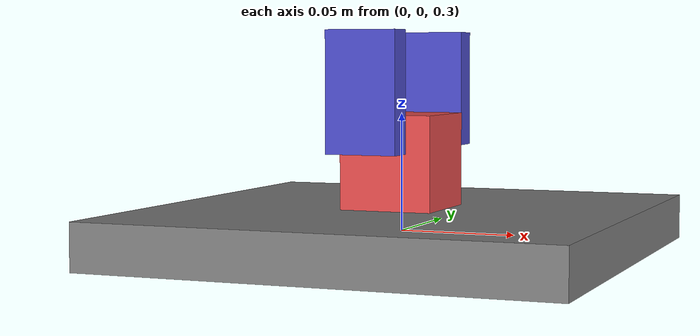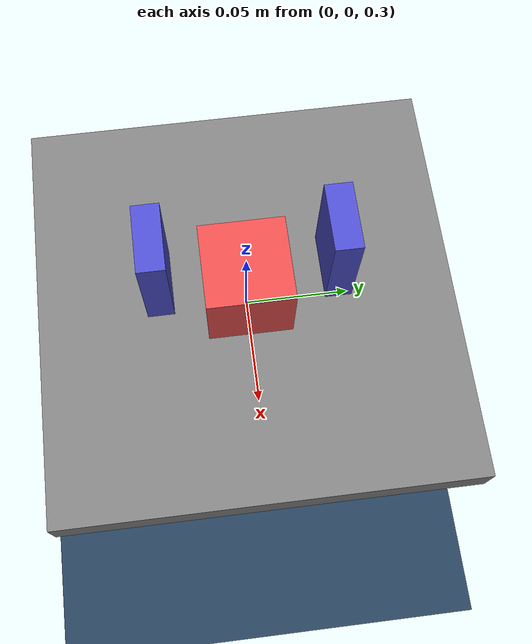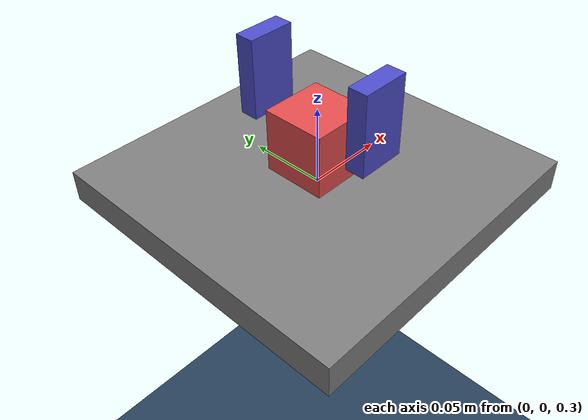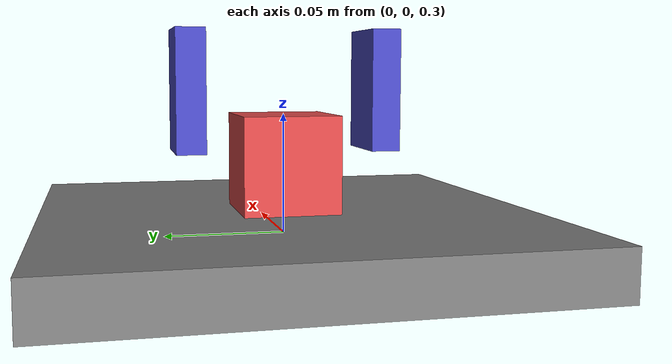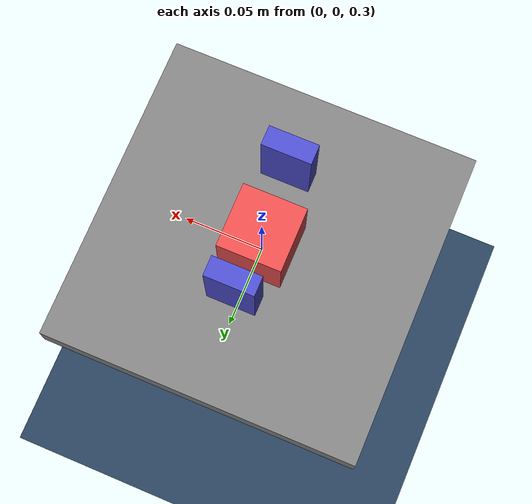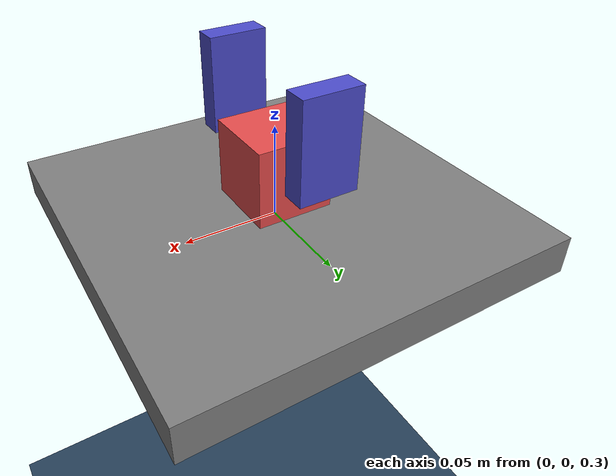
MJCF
<mujoco model="gripper_slip">
  <compiler angle="radian"/>
  <option timestep="0.002" gravity="0 0 -9.81"/>

  <visual>
    <headlight diffuse="0.6 0.6 0.6" ambient="0.1 0.1 0.1"/>
  </visual>

  <asset>
    <texture type="2d" name="ground" builtin="checker" mark="edge"
             rgb1="0.2 0.3 0.4" rgb2="0.1 0.2 0.3" width="300" height="300"/>
    <material name="ground_mat" texture="ground" texrepeat="5 5"/>
  </asset>

  <worldbody>
    <light pos="0 3 2" dir="0 -1 -0.5" directional="true"/>
    <geom name="floor" size="0 0 0.05" type="plane" material="ground_mat"/>

    <!-- Table surface at z=0.3 -->
    <body name="table" pos="0 0 0.30">
      <geom type="box" size="0.1 0.1 0.01" rgba="0.5 0.5 0.5 1" mass="0"/>
    </body>

    <!-- Cube object sitting on table between pads -->
    <body name="cube" pos="0 0 0.33">
      <freejoint/>
      <geom type="box" size="0.02 0.02 0.02" rgba="0.9 0.3 0.3 1" mass="0.1"/>
    </body>

    <!-- Gripper: two pads that squeeze toward center along y-axis -->
    <body name="gripper_base" pos="0 0 0.36">
      <body name="right_pad" pos="0 0.04 0">
        <joint name="right_j" type="slide" axis="0 -1 0" range="0 0.035"/>
        <geom type="box" size="0.015 0.006 0.025" rgba="0.3 0.3 0.8 1" mass="0.05"/>
      </body>
      <body name="left_pad" pos="0 -0.04 0">
        <joint name="left_j" type="slide" axis="0 1 0" range="0 0.035"/>
        <geom type="box" size="0.015 0.006 0.025" rgba="0.3 0.3 0.8 1" mass="0.05"/>
      </body>
    </body>
  </worldbody>

  <actuator>
    <position name="right_act" joint="right_j" ctrlrange="0 0.035" kp="200"/>
    <position name="left_act"  joint="left_j"  ctrlrange="0 0.035" kp="200"/>
  </actuator>

</mujoco>
